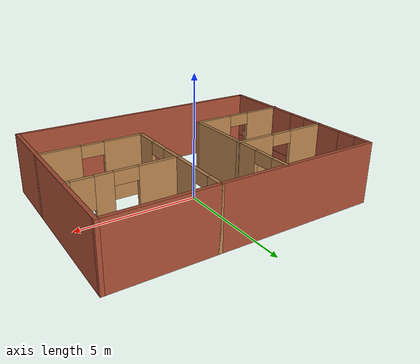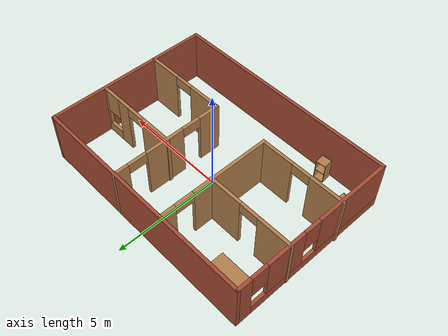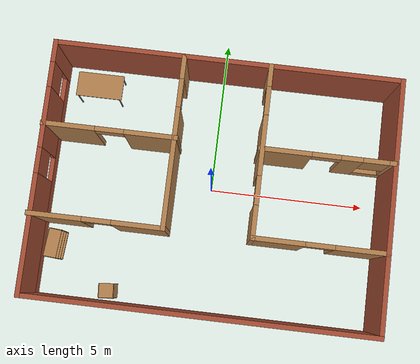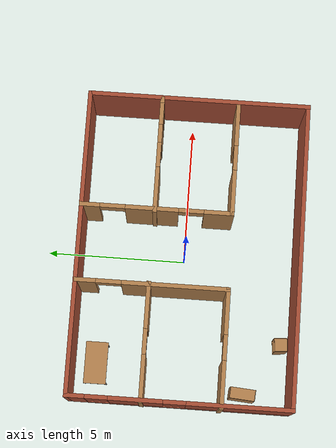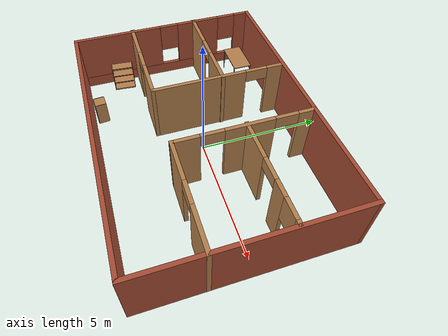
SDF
<sdf version="1.7">
 <world name="default">
  <model name="building">
   <pose>0.073597 -0.142005 0 0 -0 0</pose>
   <link name="Wall_0">
    <pose>-5.39568 -0 0 0 -0 -1.5708</pose>
    <visual name="Wall_0_Visual_0">
     <pose>-3.6378 0 1.25 0 -0 0</pose>
     <geometry><box><size>0.724404 0.15 2.5</size></box></geometry>
     <material>
      <script><uri>file://media/materials/scripts/gazebo.material</uri><name>Gazebo/Bricks</name></script>
      <ambient>1 1 1 1</ambient>
     </material>
     <meta><layer>0</layer></meta>
    </visual>
    <collision name="Wall_0_Collision_0">
     <geometry><box><size>0.724404 0.15 2.5</size></box></geometry>
     <pose>-3.6378 0 1.25 0 -0 0</pose>
    </collision>
    <visual name="Wall_0_Visual_1">
     <pose>0.362202 0 0.25 0 -0 0</pose>
     <geometry><box><size>7.2756 0.15 0.5</size></box></geometry>
     <material>
      <script><uri>file://media/materials/scripts/gazebo.material</uri><name>Gazebo/Bricks</name></script>
      <ambient>1 1 1 1</ambient>
     </material>
     <meta><layer>0</layer></meta>
    </visual>
    <collision name="Wall_0_Collision_1">
     <geometry><box><size>7.2756 0.15 0.5</size></box></geometry>
     <pose>0.362202 0 0.25 0 -0 0</pose>
    </collision>
    <visual name="Wall_0_Visual_2">
     <pose>-1.52012 0 1.5 0 -0 0</pose>
     <geometry><box><size>1.91096 0.15 2</size></box></geometry>
     <material>
      <script><uri>file://media/materials/scripts/gazebo.material</uri><name>Gazebo/Bricks</name></script>
      <ambient>1 1 1 1</ambient>
     </material>
     <meta><layer>0</layer></meta>
    </visual>
    <collision name="Wall_0_Collision_2">
     <geometry><box><size>1.91096 0.15 2</size></box></geometry>
     <pose>-1.52012 0 1.5 0 -0 0</pose>
    </collision>
    <visual name="Wall_0_Visual_3">
     <pose>2.11768 0 1.5 0 -0 0</pose>
     <geometry><box><size>3.76464 0.15 2</size></box></geometry>
     <material>
      <script><uri>file://media/materials/scripts/gazebo.material</uri><name>Gazebo/Bricks</name></script>
      <ambient>1 1 1 1</ambient>
     </material>
     <meta><layer>0</layer></meta>
    </visual>
    <collision name="Wall_0_Collision_3">
     <geometry><box><size>3.76464 0.15 2</size></box></geometry>
     <pose>2.11768 0 1.5 0 -0 0</pose>
    </collision>
    <visual name="Wall_0_Visual_4">
     <pose>-2.8756 0 1.9 0 -0 0</pose>
     <geometry><box><size>0.8 0.15 1.2</size></box></geometry>
     <material>
      <script><uri>file://media/materials/scripts/gazebo.material</uri><name>Gazebo/Bricks</name></script>
      <ambient>1 1 1 1</ambient>
     </material>
     <meta><layer>0</layer></meta>
    </visual>
    <collision name="Wall_0_Collision_4">
     <geometry><box><size>0.8 0.15 1.2</size></box></geometry>
     <pose>-2.8756 0 1.9 0 -0 0</pose>
    </collision>
    <visual name="Wall_0_Visual_5">
     <pose>-0.164637 0 1.9 0 -0 0</pose>
     <geometry><box><size>0.8 0.15 1.2</size></box></geometry>
     <material>
      <script><uri>file://media/materials/scripts/gazebo.material</uri><name>Gazebo/Bricks</name></script>
      <ambient>1 1 1 1</ambient>
     </material>
     <meta><layer>0</layer></meta>
    </visual>
    <collision name="Wall_0_Collision_5">
     <geometry><box><size>0.8 0.15 1.2</size></box></geometry>
     <pose>-0.164637 0 1.9 0 -0 0</pose>
    </collision>
   </link>
   <link name="Wall_1">
    <collision name="Wall_1_Collision">
     <geometry><box><size>11 0.15 2.5</size></box></geometry>
     <pose>0 0 1.25 0 -0 0</pose>
    </collision>
    <visual name="Wall_1_Visual">
     <pose>0 0 1.25 0 -0 0</pose>
     <geometry><box><size>11 0.15 2.5</size></box></geometry>
     <material>
      <script><uri>file://media/materials/scripts/gazebo.material</uri><name>Gazebo/Bricks</name></script>
      <ambient>1 1 1 1</ambient>
     </material>
     <meta><layer>0</layer></meta>
    </visual>
    <pose>0.029316 -3.925 0 0 -0 0</pose>
   </link>
   <link name="Wall_10">
    <pose>-3.40548 -1.45998 0 0 -0 3.14159</pose>
    <visual name="Wall_10_Visual_0">
     <pose>-1.29808 0 1.25 0 -0 0</pose>
     <geometry><box><size>1.65385 0.15 2.5</size></box></geometry>
     <material>
      <script><uri>file://media/materials/scripts/gazebo.material</uri><name>Gazebo/Wood</name></script>
      <ambient>1 1 1 1</ambient>
     </material>
     <meta><layer>0</layer></meta>
    </visual>
    <collision name="Wall_10_Collision_0">
     <geometry><box><size>1.65385 0.15 2.5</size></box></geometry>
     <pose>-1.29808 0 1.25 0 -0 0</pose>
    </collision>
    <visual name="Wall_10_Visual_1">
     <pose>1.27692 0 1.25 0 -0 0</pose>
     <geometry><box><size>1.69615 0.15 2.5</size></box></geometry>
     <material>
      <script><uri>file://media/materials/scripts/gazebo.material</uri><name>Gazebo/Wood</name></script>
      <ambient>1 1 1 1</ambient>
     </material>
     <meta><layer>0</layer></meta>
    </visual>
    <collision name="Wall_10_Collision_1">
     <geometry><box><size>1.69615 0.15 2.5</size></box></geometry>
     <pose>1.27692 0 1.25 0 -0 0</pose>
    </collision>
    <visual name="Wall_10_Visual_2">
     <pose>-0.021153 0 2.25 0 -0 0</pose>
     <geometry><box><size>0.9 0.15 0.5</size></box></geometry>
     <material>
      <script><uri>file://media/materials/scripts/gazebo.material</uri><name>Gazebo/Wood</name></script>
      <ambient>1 1 1 1</ambient>
     </material>
     <meta><layer>0</layer></meta>
    </visual>
    <collision name="Wall_10_Collision_2">
     <geometry><box><size>0.9 0.15 0.5</size></box></geometry>
     <pose>-0.021153 0 2.25 0 -0 0</pose>
    </collision>
   </link>
   <link name="Wall_12">
    <pose>3.35301 1.31898 0 0 -0 0</pose>
    <visual name="Wall_12_Visual_0">
     <pose>-1.29808 0 1.25 0 -0 0</pose>
     <geometry><box><size>1.65385 0.15 2.5</size></box></geometry>
     <material>
      <script><uri>file://media/materials/scripts/gazebo.material</uri><name>Gazebo/Wood</name></script>
      <ambient>1 1 1 1</ambient>
     </material>
     <meta><layer>0</layer></meta>
    </visual>
    <collision name="Wall_12_Collision_0">
     <geometry><box><size>1.65385 0.15 2.5</size></box></geometry>
     <pose>-1.29808 0 1.25 0 -0 0</pose>
    </collision>
    <visual name="Wall_12_Visual_1">
     <pose>0.764665 0 1.25 0 -0 0</pose>
     <geometry><box><size>0.671635 0.15 2.5</size></box></geometry>
     <material>
      <script><uri>file://media/materials/scripts/gazebo.material</uri><name>Gazebo/Wood</name></script>
      <ambient>1 1 1 1</ambient>
     </material>
     <meta><layer>0</layer></meta>
    </visual>
    <collision name="Wall_12_Collision_1">
     <geometry><box><size>0.671635 0.15 2.5</size></box></geometry>
     <pose>0.764665 0 1.25 0 -0 0</pose>
    </collision>
    <visual name="Wall_12_Visual_2">
     <pose>1.61274 0 0.25 0 -0 0</pose>
     <geometry><box><size>1.02452 0.15 0.5</size></box></geometry>
     <material>
      <script><uri>file://media/materials/scripts/gazebo.material</uri><name>Gazebo/Wood</name></script>
      <ambient>1 1 1 1</ambient>
     </material>
     <meta><layer>0</layer></meta>
    </visual>
    <collision name="Wall_12_Collision_2">
     <geometry><box><size>1.02452 0.15 0.5</size></box></geometry>
     <pose>1.61274 0 0.25 0 -0 0</pose>
    </collision>
    <visual name="Wall_12_Visual_3">
     <pose>2.01274 0 1.5 0 -0 0</pose>
     <geometry><box><size>0.224517 0.15 2</size></box></geometry>
     <material>
      <script><uri>file://media/materials/scripts/gazebo.material</uri><name>Gazebo/Wood</name></script>
      <ambient>1 1 1 1</ambient>
     </material>
     <meta><layer>0</layer></meta>
    </visual>
    <collision name="Wall_12_Collision_3">
     <geometry><box><size>0.224517 0.15 2</size></box></geometry>
     <pose>2.01274 0 1.5 0 -0 0</pose>
    </collision>
    <visual name="Wall_12_Visual_4">
     <pose>1.50048 0 1.9 0 -0 0</pose>
     <geometry><box><size>0.8 0.15 1.2</size></box></geometry>
     <material>
      <script><uri>file://media/materials/scripts/gazebo.material</uri><name>Gazebo/Wood</name></script>
      <ambient>1 1 1 1</ambient>
     </material>
     <meta><layer>0</layer></meta>
    </visual>
    <collision name="Wall_12_Collision_4">
     <geometry><box><size>0.8 0.15 1.2</size></box></geometry>
     <pose>1.50048 0 1.9 0 -0 0</pose>
    </collision>
    <visual name="Wall_12_Visual_5">
     <pose>-0.021153 0 2.25 0 -0 0</pose>
     <geometry><box><size>0.9 0.15 0.5</size></box></geometry>
     <material>
      <script><uri>file://media/materials/scripts/gazebo.material</uri><name>Gazebo/Wood</name></script>
      <ambient>1 1 1 1</ambient>
     </material>
     <meta><layer>0</layer></meta>
    </visual>
    <collision name="Wall_12_Collision_5">
     <geometry><box><size>0.9 0.15 0.5</size></box></geometry>
     <pose>-0.021153 0 2.25 0 -0 0</pose>
    </collision>
   </link>
   <link name="Wall_14">
    <pose>-3.3705 1.33647 0 0 -0 3.14159</pose>
    <visual name="Wall_14_Visual_0">
     <pose>-1.28933 0 1.25 0 -0 0</pose>
     <geometry><box><size>1.67134 0.15 2.5</size></box></geometry>
     <material>
      <script><uri>file://media/materials/scripts/gazebo.material</uri><name>Gazebo/Wood</name></script>
      <ambient>1 1 1 1</ambient>
     </material>
     <meta><layer>0</layer></meta>
    </visual>
    <collision name="Wall_14_Collision_0">
     <geometry><box><size>1.67134 0.15 2.5</size></box></geometry>
     <pose>-1.28933 0 1.25 0 -0 0</pose>
    </collision>
    <visual name="Wall_14_Visual_1">
     <pose>1.28567 0 1.25 0 -0 0</pose>
     <geometry><box><size>1.67866 0.15 2.5</size></box></geometry>
     <material>
      <script><uri>file://media/materials/scripts/gazebo.material</uri><name>Gazebo/Wood</name></script>
      <ambient>1 1 1 1</ambient>
     </material>
     <meta><layer>0</layer></meta>
    </visual>
    <collision name="Wall_14_Collision_1">
     <geometry><box><size>1.67866 0.15 2.5</size></box></geometry>
     <pose>1.28567 0 1.25 0 -0 0</pose>
    </collision>
    <visual name="Wall_14_Visual_2">
     <pose>-0.003663 0 2.25 0 -0 0</pose>
     <geometry><box><size>0.9 0.15 0.5</size></box></geometry>
     <material>
      <script><uri>file://media/materials/scripts/gazebo.material</uri><name>Gazebo/Wood</name></script>
      <ambient>1 1 1 1</ambient>
     </material>
     <meta><layer>0</layer></meta>
    </visual>
    <collision name="Wall_14_Collision_2">
     <geometry><box><size>0.9 0.15 0.5</size></box></geometry>
     <pose>-0.003663 0 2.25 0 -0 0</pose>
    </collision>
   </link>
   <link name="Wall_2">
    <collision name="Wall_2_Collision">
     <geometry><box><size>8 0.15 2.5</size></box></geometry>
     <pose>0 0 1.25 0 -0 0</pose>
    </collision>
    <visual name="Wall_2_Visual">
     <pose>0 0 1.25 0 -0 0</pose>
     <geometry><box><size>8 0.15 2.5</size></box></geometry>
     <material>
      <script><uri>file://media/materials/scripts/gazebo.material</uri><name>Gazebo/Bricks</name></script>
      <ambient>1 1 1 1</ambient>
     </material>
     <meta><layer>0</layer></meta>
    </visual>
    <pose>5.45432 -0 0 0 -0 1.5708</pose>
   </link>
   <link name="Wall_3">
    <collision name="Wall_3_Collision">
     <geometry><box><size>11 0.15 2.5</size></box></geometry>
     <pose>0 0 1.25 0 -0 0</pose>
    </collision>
    <visual name="Wall_3_Visual">
     <pose>0 0 1.25 0 -0 0</pose>
     <geometry><box><size>11 0.15 2.5</size></box></geometry>
     <material>
      <script><uri>file://media/materials/scripts/gazebo.material</uri><name>Gazebo/Bricks</name></script>
      <ambient>1 1 1 1</ambient>
     </material>
     <meta><layer>0</layer></meta>
    </visual>
    <pose>0.029316 3.925 0 0 -0 3.14159</pose>
   </link>
   <link name="Wall_6">
    <pose>1.35548 1.25 0 0 -0 -1.5708</pose>
    <visual name="Wall_6_Visual_0">
     <pose>-2.38656 0 1.25 0 -0 0</pose>
     <geometry><box><size>0.726874 0.15 2.5</size></box></geometry>
     <material>
      <script><uri>file://media/materials/scripts/gazebo.material</uri><name>Gazebo/Wood</name></script>
      <ambient>1 1 1 1</ambient>
     </material>
     <meta><layer>0</layer></meta>
    </visual>
    <collision name="Wall_6_Collision_0">
     <geometry><box><size>0.726874 0.15 2.5</size></box></geometry>
     <pose>-2.38656 0 1.25 0 -0 0</pose>
    </collision>
    <visual name="Wall_6_Visual_1">
     <pose>-0.173921 0 1.25 0 -0 0</pose>
     <geometry><box><size>1.89841 0.15 2.5</size></box></geometry>
     <material>
      <script><uri>file://media/materials/scripts/gazebo.material</uri><name>Gazebo/Wood</name></script>
      <ambient>1 1 1 1</ambient>
     </material>
     <meta><layer>0</layer></meta>
    </visual>
    <collision name="Wall_6_Collision_1">
     <geometry><box><size>1.89841 0.15 2.5</size></box></geometry>
     <pose>-0.173921 0 1.25 0 -0 0</pose>
    </collision>
    <visual name="Wall_6_Visual_2">
     <pose>2.21264 0 1.25 0 -0 0</pose>
     <geometry><box><size>1.07472 0.15 2.5</size></box></geometry>
     <material>
      <script><uri>file://media/materials/scripts/gazebo.material</uri><name>Gazebo/Wood</name></script>
      <ambient>1 1 1 1</ambient>
     </material>
     <meta><layer>0</layer></meta>
    </visual>
    <collision name="Wall_6_Collision_2">
     <geometry><box><size>1.07472 0.15 2.5</size></box></geometry>
     <pose>2.21264 0 1.25 0 -0 0</pose>
    </collision>
    <visual name="Wall_6_Visual_3">
     <pose>-1.57313 0 2.25 0 -0 0</pose>
     <geometry><box><size>0.9 0.15 0.5</size></box></geometry>
     <material>
      <script><uri>file://media/materials/scripts/gazebo.material</uri><name>Gazebo/Wood</name></script>
      <ambient>1 1 1 1</ambient>
     </material>
     <meta><layer>0</layer></meta>
    </visual>
    <collision name="Wall_6_Collision_3">
     <geometry><box><size>0.9 0.15 0.5</size></box></geometry>
     <pose>-1.57313 0 2.25 0 -0 0</pose>
    </collision>
    <visual name="Wall_6_Visual_4">
     <pose>1.22528 0 2.25 0 -0 0</pose>
     <geometry><box><size>0.9 0.15 0.5</size></box></geometry>
     <material>
      <script><uri>file://media/materials/scripts/gazebo.material</uri><name>Gazebo/Wood</name></script>
      <ambient>1 1 1 1</ambient>
     </material>
     <meta><layer>0</layer></meta>
    </visual>
    <collision name="Wall_6_Collision_4">
     <geometry><box><size>0.9 0.15 0.5</size></box></geometry>
     <pose>1.22528 0 2.25 0 -0 0</pose>
    </collision>
   </link>
   <link name="Wall_7">
    <pose>3.40548 -1.425 0 0 -0 0</pose>
    <visual name="Wall_7_Visual_0">
     <pose>-1.28933 0 1.25 0 -0 0</pose>
     <geometry><box><size>1.67134 0.15 2.5</size></box></geometry>
     <material>
      <script><uri>file://media/materials/scripts/gazebo.material</uri><name>Gazebo/Wood</name></script>
      <ambient>1 1 1 1</ambient>
     </material>
     <meta><layer>0</layer></meta>
    </visual>
    <collision name="Wall_7_Collision_0">
     <geometry><box><size>1.67134 0.15 2.5</size></box></geometry>
     <pose>-1.28933 0 1.25 0 -0 0</pose>
    </collision>
    <visual name="Wall_7_Visual_1">
     <pose>1.28567 0 1.25 0 -0 0</pose>
     <geometry><box><size>1.67866 0.15 2.5</size></box></geometry>
     <material>
      <script><uri>file://media/materials/scripts/gazebo.material</uri><name>Gazebo/Wood</name></script>
      <ambient>1 1 1 1</ambient>
     </material>
     <meta><layer>0</layer></meta>
    </visual>
    <collision name="Wall_7_Collision_1">
     <geometry><box><size>1.67866 0.15 2.5</size></box></geometry>
     <pose>1.28567 0 1.25 0 -0 0</pose>
    </collision>
    <visual name="Wall_7_Visual_2">
     <pose>-0.003663 0 2.25 0 -0 0</pose>
     <geometry><box><size>0.9 0.15 0.5</size></box></geometry>
     <material>
      <script><uri>file://media/materials/scripts/gazebo.material</uri><name>Gazebo/Wood</name></script>
      <ambient>1 1 1 1</ambient>
     </material>
     <meta><layer>0</layer></meta>
    </visual>
    <collision name="Wall_7_Collision_2">
     <geometry><box><size>0.9 0.15 0.5</size></box></geometry>
     <pose>-0.003663 0 2.25 0 -0 0</pose>
    </collision>
   </link>
   <link name="Wall_9">
    <pose>-1.35548 1.21502 0 0 -0 -1.5708</pose>
    <visual name="Wall_9_Visual_0">
     <pose>-2.36907 0 1.25 0 -0 0</pose>
     <geometry><box><size>0.761854 0.15 2.5</size></box></geometry>
     <material>
      <script><uri>file://media/materials/scripts/gazebo.material</uri><name>Gazebo/Wood</name></script>
      <ambient>1 1 1 1</ambient>
     </material>
     <meta><layer>0</layer></meta>
    </visual>
    <collision name="Wall_9_Collision_0">
     <geometry><box><size>0.761854 0.15 2.5</size></box></geometry>
     <pose>-2.36907 0 1.25 0 -0 0</pose>
    </collision>
    <visual name="Wall_9_Visual_1">
     <pose>0.830927 0 1.25 0 -0 0</pose>
     <geometry><box><size>3.83815 0.15 2.5</size></box></geometry>
     <material>
      <script><uri>file://media/materials/scripts/gazebo.material</uri><name>Gazebo/Wood</name></script>
      <ambient>1 1 1 1</ambient>
     </material>
     <meta><layer>0</layer></meta>
    </visual>
    <collision name="Wall_9_Collision_1">
     <geometry><box><size>3.83815 0.15 2.5</size></box></geometry>
     <pose>0.830927 0 1.25 0 -0 0</pose>
    </collision>
    <visual name="Wall_9_Visual_2">
     <pose>-1.53815 0 2.25 0 -0 0</pose>
     <geometry><box><size>0.9 0.15 0.5</size></box></geometry>
     <material>
      <script><uri>file://media/materials/scripts/gazebo.material</uri><name>Gazebo/Wood</name></script>
      <ambient>1 1 1 1</ambient>
     </material>
     <meta><layer>0</layer></meta>
    </visual>
    <collision name="Wall_9_Collision_2">
     <geometry><box><size>0.9 0.15 0.5</size></box></geometry>
     <pose>-1.53815 0 2.25 0 -0 0</pose>
    </collision>
   </link>
   <static>1</static>
  </model>
  <model name="bookshelf_2">
   <static>1</static>
   <link name="link">
    <inertial><mass>1</mass></inertial>
    <collision name="back">
     <pose>0 0.005 0.6 0 -0 0</pose>
     <geometry><box><size>0.9 0.01 1.2</size></box></geometry>
    </collision>
    <visual name="visual1">
     <pose>0 0.005 0.6 0 -0 0</pose>
     <geometry><box><size>0.9 0.01 1.2</size></box></geometry>
     <material>
      <script><uri>file://media/materials/scripts/gazebo.material</uri><name>Gazebo/Wood</name></script>
     </material>
    </visual>
    <collision name="left_side">
     <pose>0.45 -0.195 0.6 0 -0 0</pose>
     <geometry><box><size>0.02 0.4 1.2</size></box></geometry>
    </collision>
    <visual name="visual2">
     <pose>0.45 -0.195 0.6 0 -0 0</pose>
     <geometry><box><size>0.02 0.4 1.2</size></box></geometry>
     <material>
      <script><uri>file://media/materials/scripts/gazebo.material</uri><name>Gazebo/Wood</name></script>
     </material>
    </visual>
    <collision name="right_side">
     <pose>-0.45 -0.195 0.6 0 -0 0</pose>
     <geometry><box><size>0.02 0.4 1.2</size></box></geometry>
    </collision>
    <visual name="visual3">
     <pose>-0.45 -0.195 0.6 0 -0 0</pose>
     <geometry><box><size>0.02 0.4 1.2</size></box></geometry>
     <material>
      <script><uri>file://media/materials/scripts/gazebo.material</uri><name>Gazebo/Wood</name></script>
     </material>
    </visual>
    <collision name="bottom">
     <pose>0 -0.195 0.03 0 -0 0</pose>
     <geometry><box><size>0.88 0.4 0.06</size></box></geometry>
    </collision>
    <visual name="visual4">
     <pose>0 -0.195 0.03 0 -0 0</pose>
     <geometry><box><size>0.88 0.4 0.06</size></box></geometry>
     <material>
      <script><uri>file://media/materials/scripts/gazebo.material</uri><name>Gazebo/Wood</name></script>
     </material>
    </visual>
    <collision name="top">
     <pose>0 -0.195 1.19 0 -0 0</pose>
     <geometry><box><size>0.88 0.4 0.02</size></box></geometry>
    </collision>
    <visual name="visual5">
     <pose>0 -0.195 1.19 0 -0 0</pose>
     <geometry><box><size>0.88 0.4 0.02</size></box></geometry>
     <material>
      <script><uri>file://media/materials/scripts/gazebo.material</uri><name>Gazebo/Wood</name></script>
     </material>
    </visual>
    <collision name="low_shelf">
     <pose>0 -0.195 0.43 0 -0 0</pose>
     <geometry><box><size>0.88 0.4 0.02</size></box></geometry>
    </collision>
    <visual name="visual6">
     <pose>0 -0.195 0.43 0 -0 0</pose>
     <geometry><box><size>0.88 0.4 0.02</size></box></geometry>
     <material>
      <script><uri>file://media/materials/scripts/gazebo.material</uri><name>Gazebo/Wood</name></script>
     </material>
    </visual>
    <collision name="high_shelf">
     <pose>0 -0.195 0.8 0 -0 0</pose>
     <geometry><box><size>0.88 0.4 0.02</size></box></geometry>
    </collision>
    <visual name="visual7">
     <pose>0 -0.195 0.8 0 -0 0</pose>
     <geometry><box><size>0.88 0.4 0.02</size></box></geometry>
     <material>
      <script><uri>file://media/materials/scripts/gazebo.material</uri><name>Gazebo/Wood</name></script>
     </material>
    </visual>
   </link>
   <pose>-4.97775 -2.35966 0 0 -0 1.49068</pose>
  </model>
  <model name="table">
   <static>1</static>
   <link name="link">
    <collision name="surface">
     <pose>0 0 1 0 -0 0</pose>
     <geometry><box><size>1.5 0.8 0.03</size></box></geometry>
     <surface><friction><ode><mu>0.6</mu><mu2>0.6</mu2></ode></friction></surface>
    </collision>
    <visual name="visual1">
     <pose>0 0 1 0 -0 0</pose>
     <geometry><box><size>1.5 0.8 0.03</size></box></geometry>
     <material>
      <script><uri>file://media/materials/scripts/gazebo.material</uri><name>Gazebo/Wood</name></script>
     </material>
    </visual>
    <collision name="front_left_leg">
     <pose>0.68 0.38 0.5 0 -0 0</pose>
     <geometry><cylinder><radius>0.02</radius><length>1</length></cylinder></geometry>
    </collision>
    <visual name="front_left_leg">
     <pose>0.68 0.38 0.5 0 -0 0</pose>
     <geometry><cylinder><radius>0.02</radius><length>1</length></cylinder></geometry>
     <material>
      <script><uri>file://media/materials/scripts/gazebo.material</uri><name>Gazebo/Grey</name></script>
     </material>
    </visual>
    <collision name="front_right_leg">
     <pose>0.68 -0.38 0.5 0 -0 0</pose>
     <geometry><cylinder><radius>0.02</radius><length>1</length></cylinder></geometry>
    </collision>
    <visual name="front_right_leg">
     <pose>0.68 -0.38 0.5 0 -0 0</pose>
     <geometry><cylinder><radius>0.02</radius><length>1</length></cylinder></geometry>
     <material>
      <script><uri>file://media/materials/scripts/gazebo.material</uri><name>Gazebo/Grey</name></script>
     </material>
    </visual>
    <collision name="back_right_leg">
     <pose>-0.68 -0.38 0.5 0 -0 0</pose>
     <geometry><cylinder><radius>0.02</radius><length>1</length></cylinder></geometry>
    </collision>
    <visual name="back_right_leg">
     <pose>-0.68 -0.38 0.5 0 -0 0</pose>
     <geometry><cylinder><radius>0.02</radius><length>1</length></cylinder></geometry>
     <material>
      <script><uri>file://media/materials/scripts/gazebo.material</uri><name>Gazebo/Grey</name></script>
     </material>
    </visual>
    <collision name="back_left_leg">
     <pose>-0.68 0.38 0.5 0 -0 0</pose>
     <geometry><cylinder><radius>0.02</radius><length>1</length></cylinder></geometry>
    </collision>
    <visual name="back_left_leg">
     <pose>-0.68 0.38 0.5 0 -0 0</pose>
     <geometry><cylinder><radius>0.02</radius><length>1</length></cylinder></geometry>
     <material>
      <script><uri>file://media/materials/scripts/gazebo.material</uri><name>Gazebo/Grey</name></script>
     </material>
    </visual>
   </link>
   <pose>-4.02082 2.91091 0 0 -0 0</pose>
  </model>
  <model name="cabinet">
   <static>1</static>
   <link name="cabinet_bottom_plate">
    <inertial>
     <pose>0 0 -1 0 -0 0</pose>
     <inertia><ixx>2.05</ixx><ixy>0</ixy><ixz>0</ixz><iyy>2.05</iyy><iyz>0</iyz><izz>2.05</izz></inertia>
     <mass>25</mass>
    </inertial>
    <collision name="cabinet_bottom_plate_geom">
     <pose>0 0 0.01 0 -0 0</pose>
     <geometry><box><size>0.45 0.45 0.02</size></box></geometry>
    </collision>
    <visual name="cabinet_bottom_plate_geom_visual">
     <pose>0 0 0.01 0 -0 0</pose>
     <geometry><box><size>0.45 0.45 0.02</size></box></geometry>
     <material>
      <script><uri>file://media/materials/scripts/gazebo.material</uri><name>Gazebo/Wood</name></script>
     </material>
    </visual>
    <collision name="cabinet_bottom_plate_geom_cabinet_back_plate">
     <pose>0.235 0 0.51 0 -0 0</pose>
     <geometry><box><size>0.02 0.45 1.02</size></box></geometry>
    </collision>
    <visual name="cabinet_bottom_plate_geom_cabinet_back_plate_visual">
     <pose>0.235 0 0.51 0 -0 0</pose>
     <geometry><box><size>0.02 0.45 1.02</size></box></geometry>
     <material>
      <script><uri>file://media/materials/scripts/gazebo.material</uri><name>Gazebo/Wood</name></script>
     </material>
    </visual>
    <collision name="cabinet_bottom_plate_geom_cabinet_left_plate">
     <pose>0 0.235 0.51 0 -0 0</pose>
     <geometry><box><size>0.45 0.02 1.02</size></box></geometry>
    </collision>
    <visual name="cabinet_bottom_plate_geom_cabinet_left_plate_visual">
     <pose>0 0.235 0.51 0 -0 0</pose>
     <geometry><box><size>0.45 0.02 1.02</size></box></geometry>
     <material>
      <script><uri>file://media/materials/scripts/gazebo.material</uri><name>Gazebo/Wood</name></script>
     </material>
    </visual>
    <collision name="cabinet_bottom_plate_geom_cabinet_middle_plate">
     <pose>0 0 0.51 0 -0 0</pose>
     <geometry><box><size>0.45 0.45 0.02</size></box></geometry>
    </collision>
    <visual name="cabinet_bottom_plate_geom_cabinet_middle_plate_visual">
     <pose>0 0 0.51 0 -0 0</pose>
     <geometry><box><size>0.45 0.45 0.02</size></box></geometry>
     <material>
      <script><uri>file://media/materials/scripts/gazebo.material</uri><name>Gazebo/Wood</name></script>
     </material>
    </visual>
    <collision name="cabinet_bottom_plate_geom_cabinet_right_plate">
     <pose>0 -0.235 0.51 0 -0 0</pose>
     <geometry><box><size>0.45 0.02 1.02</size></box></geometry>
    </collision>
    <visual name="cabinet_bottom_plate_geom_cabinet_right_plate_visual">
     <pose>0 -0.235 0.51 0 -0 0</pose>
     <geometry><box><size>0.45 0.02 1.02</size></box></geometry>
     <material>
      <script><uri>file://media/materials/scripts/gazebo.material</uri><name>Gazebo/Wood</name></script>
     </material>
    </visual>
    <collision name="cabinet_bottom_plate_geom_cabinet_top_plate">
     <pose>0 0 1.01 0 -0 0</pose>
     <geometry><box><size>0.45 0.45 0.02</size></box></geometry>
    </collision>
    <visual name="cabinet_bottom_plate_geom_cabinet_top_plate_visual">
     <pose>0 0 1.01 0 -0 0</pose>
     <geometry><box><size>0.45 0.45 0.02</size></box></geometry>
     <material>
      <script><uri>file://media/materials/scripts/gazebo.material</uri><name>Gazebo/Wood</name></script>
     </material>
    </visual>
   </link>
   <pose>-2.92545 -3.65412 0 0 -0 -1.49097</pose>
  </model>
 </world>
</sdf>
